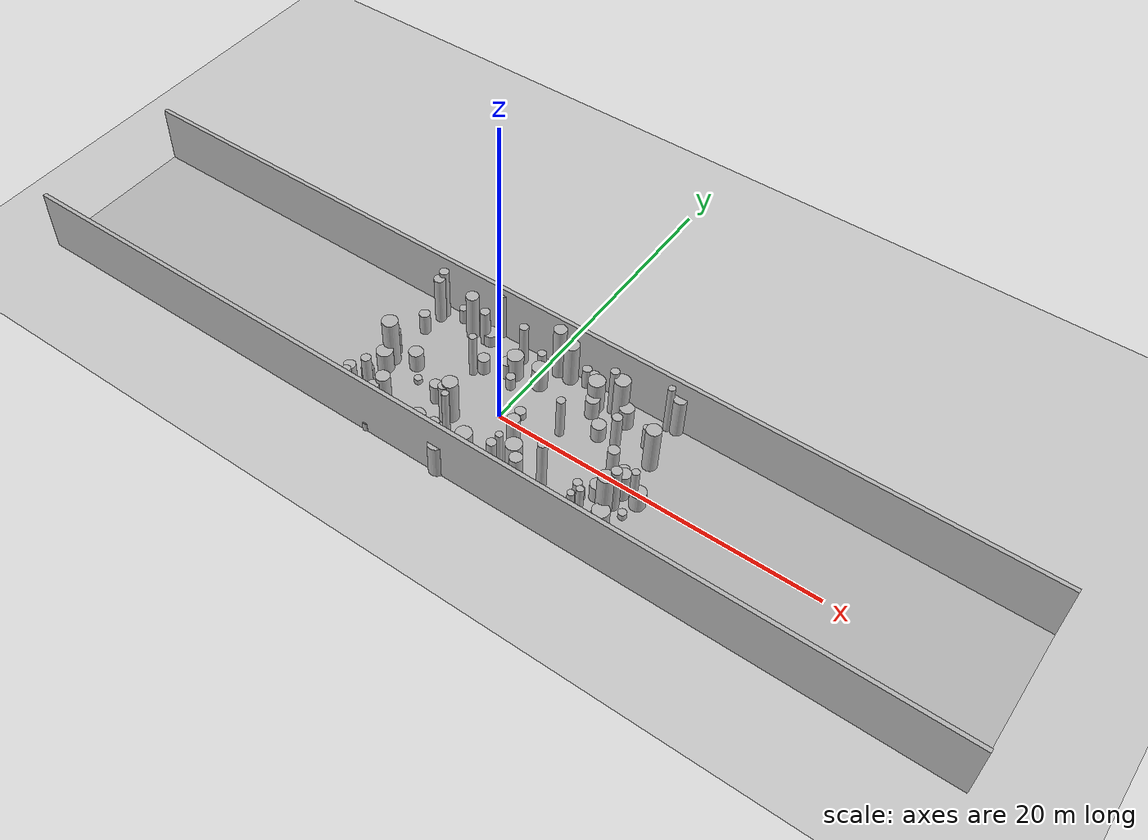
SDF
<sdf version="1.4">
 <world name="default">
  <include><uri>model://ground_plane</uri></include>
  <include><uri>model://sun</uri></include>
  <model name="forest">
   <static>true</static>
   <link name="cylinder1">
    <pose>-3.410056936858453 -1.2701892150677887 0.8086973027366486 0 0 0</pose>
    <visual name="visual">
     <geometry>
      <cylinder><radius>0.33904369996701267</radius><length>1.6173946054732973</length></cylinder>
     </geometry>
    </visual>
    <collision name="collision">
     <geometry>
      <cylinder><radius>0.33904369996701267</radius><length>1.6173946054732973</length></cylinder>
     </geometry>
     <max_contacts>0</max_contacts>
    </collision>
   </link>
   <link name="cylinder3">
    <pose>1.6993842616417325 4.403585021799794 1.548561787785984 0 0 0</pose>
    <visual name="visual">
     <geometry>
      <cylinder><radius>0.44402708403622215</radius><length>3.097123575571968</length></cylinder>
     </geometry>
    </visual>
    <collision name="collision">
     <geometry>
      <cylinder><radius>0.44402708403622215</radius><length>3.097123575571968</length></cylinder>
     </geometry>
     <max_contacts>0</max_contacts>
    </collision>
   </link>
   <link name="cylinder4">
    <pose>-3.6042722267468648 4.039614056958708 0.5409431707284422 0 0 0</pose>
    <visual name="visual">
     <geometry>
      <cylinder><radius>0.4456799034941059</radius><length>1.0818863414568844</length></cylinder>
     </geometry>
    </visual>
    <collision name="collision">
     <geometry>
      <cylinder><radius>0.4456799034941059</radius><length>1.0818863414568844</length></cylinder>
     </geometry>
     <max_contacts>0</max_contacts>
    </collision>
   </link>
   <link name="cylinder11">
    <pose>8.513826271152027 -1.5162641126023058 1.6599088720260913 0 0 0</pose>
    <visual name="visual">
     <geometry>
      <cylinder><radius>0.29402407786437507</radius><length>3.3198177440521826</length></cylinder>
     </geometry>
    </visual>
    <collision name="collision">
     <geometry>
      <cylinder><radius>0.29402407786437507</radius><length>3.3198177440521826</length></cylinder>
     </geometry>
     <max_contacts>0</max_contacts>
    </collision>
   </link>
   <link name="cylinder14">
    <pose>9.075930163478006 -4.630681401572576 1.597628720508523 0 0 0</pose>
    <visual name="visual">
     <geometry>
      <cylinder><radius>0.2718848688338954</radius><length>3.195257441017046</length></cylinder>
     </geometry>
    </visual>
    <collision name="collision">
     <geometry>
      <cylinder><radius>0.2718848688338954</radius><length>3.195257441017046</length></cylinder>
     </geometry>
     <max_contacts>0</max_contacts>
    </collision>
   </link>
   <link name="cylinder15">
    <pose>0.5785352989505945 2.9750292186021117 0.9102361143124422 0 0 0</pose>
    <visual name="visual">
     <geometry>
      <cylinder><radius>0.4637304822678691</radius><length>1.8204722286248844</length></cylinder>
     </geometry>
    </visual>
    <collision name="collision">
     <geometry>
      <cylinder><radius>0.4637304822678691</radius><length>1.8204722286248844</length></cylinder>
     </geometry>
     <max_contacts>0</max_contacts>
    </collision>
   </link>
   <link name="cylinder17">
    <pose>-4.775308046147366 3.8890800789210154 1.7092690073785224 0 0 0</pose>
    <visual name="visual">
     <geometry>
      <cylinder><radius>0.37615139349503185</radius><length>3.4185380147570448</length></cylinder>
     </geometry>
    </visual>
    <collision name="collision">
     <geometry>
      <cylinder><radius>0.37615139349503185</radius><length>3.4185380147570448</length></cylinder>
     </geometry>
     <max_contacts>0</max_contacts>
    </collision>
   </link>
   <link name="cylinder20">
    <pose>3.4435270528308592 0.8448754294673577 1.50543711050104 0 0 0</pose>
    <visual name="visual">
     <geometry><cylinder><radius>0.2462129085398339</radius><length>3.01087422100208</length></cylinder></geometry>
    </visual>
    <collision name="collision">
     <geometry><cylinder><radius>0.2462129085398339</radius><length>3.01087422100208</length></cylinder></geometry>
     <max_contacts>0</max_contacts>
    </collision>
   </link>
   <link name="cylinder21">
    <pose>-0.7353567605645921 -4.716612959977095 1.8322252500576872 0 0 0</pose>
    <visual name="visual">
     <geometry>
      <cylinder><radius>0.32141102089215934</radius><length>3.6644505001153744</length></cylinder>
     </geometry>
    </visual>
    <collision name="collision">
     <geometry>
      <cylinder><radius>0.32141102089215934</radius><length>3.6644505001153744</length></cylinder>
     </geometry>
     <max_contacts>0</max_contacts>
    </collision>
   </link>
   <link name="cylinder22">
    <pose>4.106205934701023 2.993755799769401 0.7927489453100149 0 0 0</pose>
    <visual name="visual">
     <geometry>
      <cylinder><radius>0.3991636697615998</radius><length>1.5854978906200299</length></cylinder>
     </geometry>
    </visual>
    <collision name="collision">
     <geometry>
      <cylinder><radius>0.3991636697615998</radius><length>1.5854978906200299</length></cylinder>
     </geometry>
     <max_contacts>0</max_contacts>
    </collision>
   </link>
   <link name="cylinder23">
    <pose>-7.069070440820113 3.827537880866803 1.739081858629278 0 0 0</pose>
    <visual name="visual">
     <geometry>
      <cylinder><radius>0.3302921439886698</radius><length>3.478163717258556</length></cylinder>
     </geometry>
    </visual>
    <collision name="collision">
     <geometry>
      <cylinder><radius>0.3302921439886698</radius><length>3.478163717258556</length></cylinder>
     </geometry>
     <max_contacts>0</max_contacts>
    </collision>
   </link>
   <link name="cylinder29">
    <pose>-0.9555137572657237 2.786083634189266 0.9702023812267938 0 0 0</pose>
    <visual name="visual">
     <geometry>
      <cylinder><radius>0.47938045877978486</radius><length>1.9404047624535876</length></cylinder>
     </geometry>
    </visual>
    <collision name="collision">
     <geometry>
      <cylinder><radius>0.47938045877978486</radius><length>1.9404047624535876</length></cylinder>
     </geometry>
     <max_contacts>0</max_contacts>
    </collision>
   </link>
   <link name="cylinder38">
    <pose>7.666241506215989 2.8532443910162995 0.9271853040387164 0 0 0</pose>
    <visual name="visual">
     <geometry>
      <cylinder><radius>0.21847830880316244</radius><length>1.8543706080774327</length></cylinder>
     </geometry>
    </visual>
    <collision name="collision">
     <geometry>
      <cylinder><radius>0.21847830880316244</radius><length>1.8543706080774327</length></cylinder>
     </geometry>
     <max_contacts>0</max_contacts>
    </collision>
   </link>
   <link name="cylinder42">
    <pose>-8.307093750710266 -2.8164997007199197 0.6622072614163566 0 0 0</pose>
    <visual name="visual">
     <geometry>
      <cylinder><radius>0.35939469345647124</radius><length>1.324414522832713</length></cylinder>
     </geometry>
    </visual>
    <collision name="collision">
     <geometry>
      <cylinder><radius>0.35939469345647124</radius><length>1.324414522832713</length></cylinder>
     </geometry>
     <max_contacts>0</max_contacts>
    </collision>
   </link>
   <link name="cylinder44">
    <pose>0.904040064140414 4.390043288172659 1.9281252989354605 0 0 0</pose>
    <visual name="visual">
     <geometry>
      <cylinder><radius>0.3819991879143706</radius><length>3.856250597870921</length></cylinder>
     </geometry>
    </visual>
    <collision name="collision">
     <geometry>
      <cylinder><radius>0.3819991879143706</radius><length>3.856250597870921</length></cylinder>
     </geometry>
     <max_contacts>0</max_contacts>
    </collision>
   </link>
   <link name="cylinder49">
    <pose>7.953252640835039 4.574869728848338 1.8128917431856637 0 0 0</pose>
    <visual name="visual">
     <geometry>
      <cylinder><radius>0.2049968974062898</radius><length>3.6257834863713274</length></cylinder>
     </geometry>
    </visual>
    <collision name="collision">
     <geometry>
      <cylinder><radius>0.2049968974062898</radius><length>3.6257834863713274</length></cylinder>
     </geometry>
     <max_contacts>0</max_contacts>
    </collision>
   </link>
   <link name="cylinder51">
    <pose>4.672101008395934 -2.6002466242280886 1.8634355950134864 0 0 0</pose>
    <visual name="visual">
     <geometry>
      <cylinder><radius>0.27376685721473126</radius><length>3.726871190026973</length></cylinder>
     </geometry>
    </visual>
    <collision name="collision">
     <geometry>
      <cylinder><radius>0.27376685721473126</radius><length>3.726871190026973</length></cylinder>
     </geometry>
     <max_contacts>0</max_contacts>
    </collision>
   </link>
   <link name="cylinder56">
    <pose>-5.861789615702062 4.453023283589221 0.6557879777366558 0 0 0</pose>
    <visual name="visual">
     <geometry>
      <cylinder><radius>0.25591483969236617</radius><length>1.3115759554733115</length></cylinder>
     </geometry>
    </visual>
    <collision name="collision">
     <geometry>
      <cylinder><radius>0.25591483969236617</radius><length>1.3115759554733115</length></cylinder>
     </geometry>
     <max_contacts>0</max_contacts>
    </collision>
   </link>
   <link name="cylinder57">
    <pose>-1.216583282131932 3.942091139612856 1.5413353604361941 0 0 0</pose>
    <visual name="visual">
     <geometry>
      <cylinder><radius>0.2659817680177529</radius><length>3.0826707208723882</length></cylinder>
     </geometry>
    </visual>
    <collision name="collision">
     <geometry>
      <cylinder><radius>0.2659817680177529</radius><length>3.0826707208723882</length></cylinder>
     </geometry>
     <max_contacts>0</max_contacts>
    </collision>
   </link>
   <link name="cylinder62">
    <pose>5.987886354903342 3.5073927301963845 0.8142929368390077 0 0 0</pose>
    <visual name="visual">
     <geometry>
      <cylinder><radius>0.4178552959836793</radius><length>1.6285858736780154</length></cylinder>
     </geometry>
    </visual>
    <collision name="collision">
     <geometry>
      <cylinder><radius>0.4178552959836793</radius><length>1.6285858736780154</length></cylinder>
     </geometry>
     <max_contacts>0</max_contacts>
    </collision>
   </link>
   <link name="cylinder63">
    <pose>8.476384591417855 -2.7030263662355027 0.5978973282370059 0 0 0</pose>
    <visual name="visual">
     <geometry>
      <cylinder><radius>0.4971026707762667</radius><length>1.1957946564740118</length></cylinder>
     </geometry>
    </visual>
    <collision name="collision">
     <geometry>
      <cylinder><radius>0.4971026707762667</radius><length>1.1957946564740118</length></cylinder>
     </geometry>
     <max_contacts>0</max_contacts>
    </collision>
   </link>
   <link name="cylinder64">
    <pose>2.7619240202183164 -2.455753605274219 1.0691079849985297 0 0 0</pose>
    <visual name="visual">
     <geometry>
      <cylinder><radius>0.47196936832046193</radius><length>2.1382159699970593</length></cylinder>
     </geometry>
    </visual>
    <collision name="collision">
     <geometry>
      <cylinder><radius>0.47196936832046193</radius><length>2.1382159699970593</length></cylinder>
     </geometry>
     <max_contacts>0</max_contacts>
    </collision>
   </link>
   <link name="cylinder65">
    <pose>5.555162849658647 -4.183981940254874 0.7771060286569154 0 0 0</pose>
    <visual name="visual">
     <geometry>
      <cylinder><radius>0.4940623162058991</radius><length>1.5542120573138307</length></cylinder>
     </geometry>
    </visual>
    <collision name="collision">
     <geometry>
      <cylinder><radius>0.4940623162058991</radius><length>1.5542120573138307</length></cylinder>
     </geometry>
     <max_contacts>0</max_contacts>
    </collision>
   </link>
   <link name="cylinder74">
    <pose>-5.344949083121492 -4.9527701439744884 0.3000630937218423 0 0 0</pose>
    <visual name="visual">
     <geometry>
      <cylinder><radius>0.2527022216960019</radius><length>0.6001261874436846</length></cylinder>
     </geometry>
    </visual>
    <collision name="collision">
     <geometry>
      <cylinder><radius>0.2527022216960019</radius><length>0.6001261874436846</length></cylinder>
     </geometry>
     <max_contacts>0</max_contacts>
    </collision>
   </link>
   <link name="cylinder78">
    <pose>-0.48821396889628943 -4.9151921007384605 1.127450024972422 0 0 0</pose>
    <visual name="visual">
     <geometry>
      <cylinder><radius>0.48897684717883183</radius><length>2.254900049944844</length></cylinder>
     </geometry>
    </visual>
    <collision name="collision">
     <geometry>
      <cylinder><radius>0.48897684717883183</radius><length>2.254900049944844</length></cylinder>
     </geometry>
     <max_contacts>0</max_contacts>
    </collision>
   </link>
   <link name="cylinder82">
    <pose>1.9240226608488058 -2.603008552193422 1.2350960365866193 0 0 0</pose>
    <visual name="visual">
     <geometry>
      <cylinder><radius>0.2125009094644301</radius><length>2.4701920731732385</length></cylinder>
     </geometry>
    </visual>
    <collision name="collision">
     <geometry>
      <cylinder><radius>0.2125009094644301</radius><length>2.4701920731732385</length></cylinder>
     </geometry>
     <max_contacts>0</max_contacts>
    </collision>
   </link>
   <link name="cylinder84">
    <pose>-3.3835551550107823 4.963984115556979 1.7615465854213015 0 0 0</pose>
    <visual name="visual">
     <geometry><cylinder><radius>0.285282159561505</radius><length>3.523093170842603</length></cylinder></geometry>
    </visual>
    <collision name="collision">
     <geometry><cylinder><radius>0.285282159561505</radius><length>3.523093170842603</length></cylinder></geometry>
     <max_contacts>0</max_contacts>
    </collision>
   </link>
   <link name="cylinder89">
    <pose>7.447774535454229 -1.5333572310147292 0.6947254669295215 0 0 0</pose>
    <visual name="visual">
     <geometry>
      <cylinder><radius>0.3918472777974531</radius><length>1.389450933859043</length></cylinder>
     </geometry>
    </visual>
    <collision name="collision">
     <geometry>
      <cylinder><radius>0.3918472777974531</radius><length>1.389450933859043</length></cylinder>
     </geometry>
     <max_contacts>0</max_contacts>
    </collision>
   </link>
   <link name="cylinder91">
    <pose>1.0441906551639946 0.527311071146257 0.372120222019101 0 0 0</pose>
    <visual name="visual">
     <geometry>
      <cylinder><radius>0.3179980335426568</radius><length>0.744240444038202</length></cylinder>
     </geometry>
    </visual>
    <collision name="collision">
     <geometry>
      <cylinder><radius>0.3179980335426568</radius><length>0.744240444038202</length></cylinder>
     </geometry>
     <max_contacts>0</max_contacts>
    </collision>
   </link>
   <link name="cylinder96">
    <pose>-2.18765522012977 -2.090191180456009 1.5269030576328113 0 0 0</pose>
    <visual name="visual">
     <geometry>
      <cylinder><radius>0.2880252304737093</radius><length>3.0538061152656226</length></cylinder>
     </geometry>
    </visual>
    <collision name="collision">
     <geometry>
      <cylinder><radius>0.2880252304737093</radius><length>3.0538061152656226</length></cylinder>
     </geometry>
     <max_contacts>0</max_contacts>
    </collision>
   </link>
   <link name="cylinder97">
    <pose>3.5290431675477087 -3.3259465993697237 1.246069684449678 0 0 0</pose>
    <visual name="visual">
     <geometry>
      <cylinder><radius>0.3631945659518415</radius><length>2.492139368899356</length></cylinder>
     </geometry>
    </visual>
    <collision name="collision">
     <geometry>
      <cylinder><radius>0.3631945659518415</radius><length>2.492139368899356</length></cylinder>
     </geometry>
     <max_contacts>0</max_contacts>
    </collision>
   </link>
   <link name="cylinder99">
    <pose>8.454155598964633 4.76141744301648 1.4431473033985371 0 0 0</pose>
    <visual name="visual">
     <geometry>
      <cylinder><radius>0.378942119532782</radius><length>2.8862946067970743</length></cylinder>
     </geometry>
    </visual>
    <collision name="collision">
     <geometry>
      <cylinder><radius>0.378942119532782</radius><length>2.8862946067970743</length></cylinder>
     </geometry>
     <max_contacts>0</max_contacts>
    </collision>
   </link>
   <link name="cylinder100">
    <pose>2.0262069591907235 -1.4811771913672134 1.3592636784955692 0 0 0</pose>
    <visual name="visual">
     <geometry>
      <cylinder><radius>0.38116836146506805</radius><length>2.7185273569911383</length></cylinder>
     </geometry>
    </visual>
    <collision name="collision">
     <geometry>
      <cylinder><radius>0.38116836146506805</radius><length>2.7185273569911383</length></cylinder>
     </geometry>
     <max_contacts>0</max_contacts>
    </collision>
   </link>
   <link name="cylinder101">
    <pose>-2.0100371667277805 -1.7282284383721747 1.574066608651663 0 0 0</pose>
    <visual name="visual">
     <geometry>
      <cylinder><radius>0.45331978980849696</radius><length>3.148133217303326</length></cylinder>
     </geometry>
    </visual>
    <collision name="collision">
     <geometry>
      <cylinder><radius>0.45331978980849696</radius><length>3.148133217303326</length></cylinder>
     </geometry>
     <max_contacts>0</max_contacts>
    </collision>
   </link>
   <link name="cylinder105">
    <pose>-1.1269547453769349 -4.664405201667633 1.5533646975971895 0 0 0</pose>
    <visual name="visual">
     <geometry>
      <cylinder><radius>0.41441380141961914</radius><length>3.106729395194379</length></cylinder>
     </geometry>
    </visual>
    <collision name="collision">
     <geometry>
      <cylinder><radius>0.41441380141961914</radius><length>3.106729395194379</length></cylinder>
     </geometry>
     <max_contacts>0</max_contacts>
    </collision>
   </link>
   <link name="cylinder106">
    <pose>5.265616871098615 1.8866199431176645 0.66029550988264 0 0 0</pose>
    <visual name="visual">
     <geometry><cylinder><radius>0.4156187701345254</radius><length>1.32059101976528</length></cylinder></geometry>
    </visual>
    <collision name="collision">
     <geometry><cylinder><radius>0.4156187701345254</radius><length>1.32059101976528</length></cylinder></geometry>
     <max_contacts>0</max_contacts>
    </collision>
   </link>
   <link name="cylinder107">
    <pose>-7.0520566402760885 4.240237499098464 1.8624179462977901 0 0 0</pose>
    <visual name="visual">
     <geometry>
      <cylinder><radius>0.2793973855012143</radius><length>3.7248358925955802</length></cylinder>
     </geometry>
    </visual>
    <collision name="collision">
     <geometry>
      <cylinder><radius>0.2793973855012143</radius><length>3.7248358925955802</length></cylinder>
     </geometry>
     <max_contacts>0</max_contacts>
    </collision>
   </link>
   <link name="cylinder108">
    <pose>-7.17903480211481 2.4985365651527225 0.8328884668430663 0 0 0</pose>
    <visual name="visual">
     <geometry>
      <cylinder><radius>0.32481442586393244</radius><length>1.6657769336861326</length></cylinder>
     </geometry>
    </visual>
    <collision name="collision">
     <geometry>
      <cylinder><radius>0.32481442586393244</radius><length>1.6657769336861326</length></cylinder>
     </geometry>
     <max_contacts>0</max_contacts>
    </collision>
   </link>
   <link name="cylinder115">
    <pose>3.9670096905990775 3.5206465443669117 1.2415007969273095 0 0 0</pose>
    <visual name="visual">
     <geometry>
      <cylinder><radius>0.48582071134457167</radius><length>2.483001593854619</length></cylinder>
     </geometry>
    </visual>
    <collision name="collision">
     <geometry>
      <cylinder><radius>0.48582071134457167</radius><length>2.483001593854619</length></cylinder>
     </geometry>
     <max_contacts>0</max_contacts>
    </collision>
   </link>
   <link name="cylinder117">
    <pose>0.01663398971237129 -3.191913548699019 0.8949154427879038 0 0 0</pose>
    <visual name="visual">
     <geometry>
      <cylinder><radius>0.4764992846977568</radius><length>1.7898308855758076</length></cylinder>
     </geometry>
    </visual>
    <collision name="collision">
     <geometry>
      <cylinder><radius>0.4764992846977568</radius><length>1.7898308855758076</length></cylinder>
     </geometry>
     <max_contacts>0</max_contacts>
    </collision>
   </link>
   <link name="cylinder118">
    <pose>-7.1657664120382485 -1.103263338679369 0.8538160496822831 0 0 0</pose>
    <visual name="visual">
     <geometry>
      <cylinder><radius>0.4833527510020856</radius><length>1.7076320993645662</length></cylinder>
     </geometry>
    </visual>
    <collision name="collision">
     <geometry>
      <cylinder><radius>0.4833527510020856</radius><length>1.7076320993645662</length></cylinder>
     </geometry>
     <max_contacts>0</max_contacts>
    </collision>
   </link>
   <link name="cylinder121">
    <pose>-5.045050052677276 -0.8360299215641618 0.30074459435944917 0 0 0</pose>
    <visual name="visual">
     <geometry>
      <cylinder><radius>0.2345839055761955</radius><length>0.6014891887188983</length></cylinder>
     </geometry>
    </visual>
    <collision name="collision">
     <geometry>
      <cylinder><radius>0.2345839055761955</radius><length>0.6014891887188983</length></cylinder>
     </geometry>
     <max_contacts>0</max_contacts>
    </collision>
   </link>
   <link name="cylinder122">
    <pose>8.18824473058553 -0.16479095459364324 0.9033372044904705 0 0 0</pose>
    <visual name="visual">
     <geometry>
      <cylinder><radius>0.3045565476931502</radius><length>1.806674408980941</length></cylinder>
     </geometry>
    </visual>
    <collision name="collision">
     <geometry>
      <cylinder><radius>0.3045565476931502</radius><length>1.806674408980941</length></cylinder>
     </geometry>
     <max_contacts>0</max_contacts>
    </collision>
   </link>
   <link name="cylinder140">
    <pose>-1.3437851640908711 2.5695772574655065 0.7008884507051227 0 0 0</pose>
    <visual name="visual">
     <geometry>
      <cylinder><radius>0.379410713040206</radius><length>1.4017769014102455</length></cylinder>
     </geometry>
    </visual>
    <collision name="collision">
     <geometry>
      <cylinder><radius>0.379410713040206</radius><length>1.4017769014102455</length></cylinder>
     </geometry>
     <max_contacts>0</max_contacts>
    </collision>
   </link>
   <link name="cylinder142">
    <pose>-5.832251488285063 0.025188498025076278 0.7567058276348675 0 0 0</pose>
    <visual name="visual">
     <geometry>
      <cylinder><radius>0.42881849972693087</radius><length>1.513411655269735</length></cylinder>
     </geometry>
    </visual>
    <collision name="collision">
     <geometry>
      <cylinder><radius>0.42881849972693087</radius><length>1.513411655269735</length></cylinder>
     </geometry>
     <max_contacts>0</max_contacts>
    </collision>
   </link>
   <link name="cylinder143">
    <pose>-7.449722033508998 0.22869438516081964 1.0142557114813062 0 0 0</pose>
    <visual name="visual">
     <geometry>
      <cylinder><radius>0.29577408432567776</radius><length>2.0285114229626124</length></cylinder>
     </geometry>
    </visual>
    <collision name="collision">
     <geometry>
      <cylinder><radius>0.29577408432567776</radius><length>2.0285114229626124</length></cylinder>
     </geometry>
     <max_contacts>0</max_contacts>
    </collision>
   </link>
   <link name="cylinder147">
    <pose>2.2318859119589405 -3.6942642966422836 1.5702271628601498 0 0 0</pose>
    <visual name="visual">
     <geometry>
      <cylinder><radius>0.28207948642781167</radius><length>3.1404543257202997</length></cylinder>
     </geometry>
    </visual>
    <collision name="collision">
     <geometry>
      <cylinder><radius>0.28207948642781167</radius><length>3.1404543257202997</length></cylinder>
     </geometry>
     <max_contacts>0</max_contacts>
    </collision>
   </link>
   <link name="cylinder149">
    <pose>-4.611925199534898 -4.125645401795887 0.4610702926061932 0 0 0</pose>
    <visual name="visual">
     <geometry>
      <cylinder><radius>0.4543632709265271</radius><length>0.9221405852123864</length></cylinder>
     </geometry>
    </visual>
    <collision name="collision">
     <geometry>
      <cylinder><radius>0.4543632709265271</radius><length>0.9221405852123864</length></cylinder>
     </geometry>
     <max_contacts>0</max_contacts>
    </collision>
   </link>
   <link name="cylinder151">
    <pose>7.540270837834235 -3.3536562924953204 1.5060341078564539 0 0 0</pose>
    <visual name="visual">
     <geometry>
      <cylinder><radius>0.20890541704790747</radius><length>3.0120682157129077</length></cylinder>
     </geometry>
    </visual>
    <collision name="collision">
     <geometry>
      <cylinder><radius>0.20890541704790747</radius><length>3.0120682157129077</length></cylinder>
     </geometry>
     <max_contacts>0</max_contacts>
    </collision>
   </link>
   <link name="cylinder153">
    <pose>-2.9837255852383677 1.551792398521119 1.6278116451622306 0 0 0</pose>
    <visual name="visual">
     <geometry>
      <cylinder><radius>0.22860658085641564</radius><length>3.2556232903244613</length></cylinder>
     </geometry>
    </visual>
    <collision name="collision">
     <geometry>
      <cylinder><radius>0.22860658085641564</radius><length>3.2556232903244613</length></cylinder>
     </geometry>
     <max_contacts>0</max_contacts>
    </collision>
   </link>
   <link name="cylinder155">
    <pose>6.753305606146544 -2.122759517920457 0.4765677977854902 0 0 0</pose>
    <visual name="visual">
     <geometry>
      <cylinder><radius>0.3114492841796859</radius><length>0.9531355955709804</length></cylinder>
     </geometry>
    </visual>
    <collision name="collision">
     <geometry>
      <cylinder><radius>0.3114492841796859</radius><length>0.9531355955709804</length></cylinder>
     </geometry>
     <max_contacts>0</max_contacts>
    </collision>
   </link>
   <link name="cylinder158">
    <pose>-6.939897222559168 -4.425659071974048 1.6844545238135116 0 0 0</pose>
    <visual name="visual">
     <geometry>
      <cylinder><radius>0.2519312906877482</radius><length>3.368909047627023</length></cylinder>
     </geometry>
    </visual>
    <collision name="collision">
     <geometry>
      <cylinder><radius>0.2519312906877482</radius><length>3.368909047627023</length></cylinder>
     </geometry>
     <max_contacts>0</max_contacts>
    </collision>
   </link>
   <link name="cylinder159">
    <pose>2.662314847898056 4.583353903330057 0.8101523519440019 0 0 0</pose>
    <visual name="visual">
     <geometry>
      <cylinder><radius>0.2693161028740845</radius><length>1.6203047038880038</length></cylinder>
     </geometry>
    </visual>
    <collision name="collision">
     <geometry>
      <cylinder><radius>0.2693161028740845</radius><length>1.6203047038880038</length></cylinder>
     </geometry>
     <max_contacts>0</max_contacts>
    </collision>
   </link>
   <link name="cylinder162">
    <pose>6.278680372624528 2.0295871469236912 1.2503231246175543 0 0 0</pose>
    <visual name="visual">
     <geometry>
      <cylinder><radius>0.2889671473416684</radius><length>2.5006462492351087</length></cylinder>
     </geometry>
    </visual>
    <collision name="collision">
     <geometry>
      <cylinder><radius>0.2889671473416684</radius><length>2.5006462492351087</length></cylinder>
     </geometry>
     <max_contacts>0</max_contacts>
    </collision>
   </link>
   <link name="cylinder165">
    <pose>0.2455348825671102 3.6230762905129925 1.0845931807552873 0 0 0</pose>
    <visual name="visual">
     <geometry>
      <cylinder><radius>0.24729188276820296</radius><length>2.1691863615105746</length></cylinder>
     </geometry>
    </visual>
    <collision name="collision">
     <geometry>
      <cylinder><radius>0.24729188276820296</radius><length>2.1691863615105746</length></cylinder>
     </geometry>
     <max_contacts>0</max_contacts>
    </collision>
   </link>
   <link name="cylinder167">
    <pose>6.507806271920675 -4.188499996760378 1.1190438404396175 0 0 0</pose>
    <visual name="visual">
     <geometry><cylinder><radius>0.382001092572669</radius><length>2.238087680879235</length></cylinder></geometry>
    </visual>
    <collision name="collision">
     <geometry><cylinder><radius>0.382001092572669</radius><length>2.238087680879235</length></cylinder></geometry>
     <max_contacts>0</max_contacts>
    </collision>
   </link>
   <link name="cylinder168">
    <pose>-5.955313370904836 -2.7205814068654774 0.9363315096484442 0 0 0</pose>
    <visual name="visual">
     <geometry>
      <cylinder><radius>0.41996027178145734</radius><length>1.8726630192968885</length></cylinder>
     </geometry>
    </visual>
    <collision name="collision">
     <geometry>
      <cylinder><radius>0.41996027178145734</radius><length>1.8726630192968885</length></cylinder>
     </geometry>
     <max_contacts>0</max_contacts>
    </collision>
   </link>
   <link name="cylinder172">
    <pose>6.995356080647902 -2.7445661976907356 1.2288306683545116 0 0 0</pose>
    <visual name="visual">
     <geometry>
      <cylinder><radius>0.24886425088943964</radius><length>2.457661336709023</length></cylinder>
     </geometry>
    </visual>
    <collision name="collision">
     <geometry>
      <cylinder><radius>0.24886425088943964</radius><length>2.457661336709023</length></cylinder>
     </geometry>
     <max_contacts>0</max_contacts>
    </collision>
   </link>
   <link name="cylinder173">
    <pose>-0.9666894380478475 -4.000355099119104 0.47204089362255963 0 0 0</pose>
    <visual name="visual">
     <geometry>
      <cylinder><radius>0.2696632736147924</radius><length>0.9440817872451193</length></cylinder>
     </geometry>
    </visual>
    <collision name="collision">
     <geometry>
      <cylinder><radius>0.2696632736147924</radius><length>0.9440817872451193</length></cylinder>
     </geometry>
     <max_contacts>0</max_contacts>
    </collision>
   </link>
   <link name="cylinder181">
    <pose>-6.152522744014465 -3.3330417938270953 0.7960919406676716 0 0 0</pose>
    <visual name="visual">
     <geometry>
      <cylinder><radius>0.3458643513564071</radius><length>1.5921838813353433</length></cylinder>
     </geometry>
    </visual>
    <collision name="collision">
     <geometry>
      <cylinder><radius>0.3458643513564071</radius><length>1.5921838813353433</length></cylinder>
     </geometry>
     <max_contacts>0</max_contacts>
    </collision>
   </link>
   <link name="cylinder184">
    <pose>8.193035965637065 -4.036262094125758 0.8602480349647209 0 0 0</pose>
    <visual name="visual">
     <geometry>
      <cylinder><radius>0.4912859617452464</radius><length>1.7204960699294418</length></cylinder>
     </geometry>
    </visual>
    <collision name="collision">
     <geometry>
      <cylinder><radius>0.4912859617452464</radius><length>1.7204960699294418</length></cylinder>
     </geometry>
     <max_contacts>0</max_contacts>
    </collision>
   </link>
   <link name="cylinder186">
    <pose>8.476044342081543 -0.6370637481013395 1.0628644336486623 0 0 0</pose>
    <visual name="visual">
     <geometry>
      <cylinder><radius>0.3932719110542426</radius><length>2.1257288672973247</length></cylinder>
     </geometry>
    </visual>
    <collision name="collision">
     <geometry>
      <cylinder><radius>0.3932719110542426</radius><length>2.1257288672973247</length></cylinder>
     </geometry>
     <max_contacts>0</max_contacts>
    </collision>
   </link>
   <link name="cylinder187">
    <pose>-7.2429043731477805 -0.39806804860475253 1.7349902629309049 0 0 0</pose>
    <visual name="visual">
     <geometry>
      <cylinder><radius>0.4750301130353699</radius><length>3.4699805258618097</length></cylinder>
     </geometry>
    </visual>
    <collision name="collision">
     <geometry>
      <cylinder><radius>0.4750301130353699</radius><length>3.4699805258618097</length></cylinder>
     </geometry>
     <max_contacts>0</max_contacts>
    </collision>
   </link>
   <link name="cylinder190">
    <pose>9.452927483596802 -0.698949576259773 0.7008479118514679 0 0 0</pose>
    <visual name="visual">
     <geometry>
      <cylinder><radius>0.4582380857568583</radius><length>1.4016958237029358</length></cylinder>
     </geometry>
    </visual>
    <collision name="collision">
     <geometry>
      <cylinder><radius>0.4582380857568583</radius><length>1.4016958237029358</length></cylinder>
     </geometry>
     <max_contacts>0</max_contacts>
    </collision>
   </link>
   <link name="cylinder194">
    <pose>5.399799715047248 3.801249440730812 1.617852056244018 0 0 0</pose>
    <visual name="visual">
     <geometry>
      <cylinder><radius>0.45418389898202205</radius><length>3.235704112488036</length></cylinder>
     </geometry>
    </visual>
    <collision name="collision">
     <geometry>
      <cylinder><radius>0.45418389898202205</radius><length>3.235704112488036</length></cylinder>
     </geometry>
     <max_contacts>0</max_contacts>
    </collision>
   </link>
   <link name="cylinder196">
    <pose>8.191502713036805 -1.983513117617247 1.5529557586120424 0 0 0</pose>
    <visual name="visual">
     <geometry>
      <cylinder><radius>0.4495362759446869</radius><length>3.1059115172240848</length></cylinder>
     </geometry>
    </visual>
    <collision name="collision">
     <geometry>
      <cylinder><radius>0.4495362759446869</radius><length>3.1059115172240848</length></cylinder>
     </geometry>
     <max_contacts>0</max_contacts>
    </collision>
   </link>
   <link name="cylinder203">
    <pose>7.694518966129962 -0.5637080430311965 1.7172278475273832 0 0 0</pose>
    <visual name="visual">
     <geometry>
      <cylinder><radius>0.3209285983632873</radius><length>3.4344556950547664</length></cylinder>
     </geometry>
    </visual>
    <collision name="collision">
     <geometry>
      <cylinder><radius>0.3209285983632873</radius><length>3.4344556950547664</length></cylinder>
     </geometry>
     <max_contacts>0</max_contacts>
    </collision>
   </link>
   <link name="cylinder205">
    <pose>-2.603523001420726 2.0457903326653497 0.665102962340389 0 0 0</pose>
    <visual name="visual">
     <geometry>
      <cylinder><radius>0.3619658212468383</radius><length>1.330205924680778</length></cylinder>
     </geometry>
    </visual>
    <collision name="collision">
     <geometry>
      <cylinder><radius>0.3619658212468383</radius><length>1.330205924680778</length></cylinder>
     </geometry>
     <max_contacts>0</max_contacts>
    </collision>
   </link>
   <link name="cylinder207">
    <pose>8.331555611732107 -0.4631563838724908 0.8221914682451102 0 0 0</pose>
    <visual name="visual">
     <geometry>
      <cylinder><radius>0.21404704257245724</radius><length>1.6443829364902205</length></cylinder>
     </geometry>
    </visual>
    <collision name="collision">
     <geometry>
      <cylinder><radius>0.21404704257245724</radius><length>1.6443829364902205</length></cylinder>
     </geometry>
     <max_contacts>0</max_contacts>
    </collision>
   </link>
   <link name="cylinder208">
    <pose>5.0413379987931215 -3.914464617488733 0.6041944199931812 0 0 0</pose>
    <visual name="visual">
     <geometry>
      <cylinder><radius>0.46258950499324064</radius><length>1.2083888399863625</length></cylinder>
     </geometry>
    </visual>
    <collision name="collision">
     <geometry>
      <cylinder><radius>0.46258950499324064</radius><length>1.2083888399863625</length></cylinder>
     </geometry>
     <max_contacts>0</max_contacts>
    </collision>
   </link>
   <link name="cylinder213">
    <pose>7.342394725706988 -3.901124665790341 1.556077583620516 0 0 0</pose>
    <visual name="visual">
     <geometry>
      <cylinder><radius>0.2020529284592091</radius><length>3.112155167241032</length></cylinder>
     </geometry>
    </visual>
    <collision name="collision">
     <geometry>
      <cylinder><radius>0.2020529284592091</radius><length>3.112155167241032</length></cylinder>
     </geometry>
     <max_contacts>0</max_contacts>
    </collision>
   </link>
   <link name="cylinder214">
    <pose>3.470334563697648 4.067908415499792 1.087304194829194 0 0 0</pose>
    <visual name="visual">
     <geometry>
      <cylinder><radius>0.26343483231805803</radius><length>2.174608389658388</length></cylinder>
     </geometry>
    </visual>
    <collision name="collision">
     <geometry>
      <cylinder><radius>0.26343483231805803</radius><length>2.174608389658388</length></cylinder>
     </geometry>
     <max_contacts>0</max_contacts>
    </collision>
   </link>
   <link name="cylinder216">
    <pose>-0.6522251440553397 1.9420701841791157 0.5758192289235042 0 0 0</pose>
    <visual name="visual">
     <geometry>
      <cylinder><radius>0.27365076795548005</radius><length>1.1516384578470085</length></cylinder>
     </geometry>
    </visual>
    <collision name="collision">
     <geometry>
      <cylinder><radius>0.27365076795548005</radius><length>1.1516384578470085</length></cylinder>
     </geometry>
     <max_contacts>0</max_contacts>
    </collision>
   </link>
   <link name="cylinder222">
    <pose>4.849063538011851 3.8554636065339754 1.7767497613222838 0 0 0</pose>
    <visual name="visual">
     <geometry><cylinder><radius>0.25017154660569</radius><length>3.5534995226445676</length></cylinder></geometry>
    </visual>
    <collision name="collision">
     <geometry><cylinder><radius>0.25017154660569</radius><length>3.5534995226445676</length></cylinder></geometry>
     <max_contacts>0</max_contacts>
    </collision>
   </link>
   <link name="cylinder225">
    <pose>-1.8423210062308968 -4.654919285337603 1.723137726638926 0 0 0</pose>
    <visual name="visual">
     <geometry>
      <cylinder><radius>0.4281500956467674</radius><length>3.446275453277852</length></cylinder>
     </geometry>
    </visual>
    <collision name="collision">
     <geometry>
      <cylinder><radius>0.4281500956467674</radius><length>3.446275453277852</length></cylinder>
     </geometry>
     <max_contacts>0</max_contacts>
    </collision>
   </link>
   <link name="cylinder228">
    <pose>-1.3504320015485511 -2.958572654134147 1.9118344828136566 0 0 0</pose>
    <visual name="visual">
     <geometry>
      <cylinder><radius>0.2053032605470598</radius><length>3.8236689656273133</length></cylinder>
     </geometry>
    </visual>
    <collision name="collision">
     <geometry>
      <cylinder><radius>0.2053032605470598</radius><length>3.8236689656273133</length></cylinder>
     </geometry>
     <max_contacts>0</max_contacts>
    </collision>
   </link>
   <link name="cylinder229">
    <pose>9.162814594676448 -0.6765327472372684 1.414829038782936 0 0 0</pose>
    <visual name="visual">
     <geometry>
      <cylinder><radius>0.22056775526173011</radius><length>2.829658077565872</length></cylinder>
     </geometry>
    </visual>
    <collision name="collision">
     <geometry>
      <cylinder><radius>0.22056775526173011</radius><length>2.829658077565872</length></cylinder>
     </geometry>
     <max_contacts>0</max_contacts>
    </collision>
   </link>
   <link name="cylinder230">
    <pose>-6.764239205320056 -3.0388191289573996 1.559283948412344 0 0 0</pose>
    <visual name="visual">
     <geometry>
      <cylinder><radius>0.28210105418800324</radius><length>3.118567896824688</length></cylinder>
     </geometry>
    </visual>
    <collision name="collision">
     <geometry>
      <cylinder><radius>0.28210105418800324</radius><length>3.118567896824688</length></cylinder>
     </geometry>
     <max_contacts>0</max_contacts>
    </collision>
   </link>
   <link name="cylinder233">
    <pose>-7.311454478779762 -2.449217080443873 0.6938093617514673 0 0 0</pose>
    <visual name="visual">
     <geometry>
      <cylinder><radius>0.3635422884046208</radius><length>1.3876187235029347</length></cylinder>
     </geometry>
    </visual>
    <collision name="collision">
     <geometry>
      <cylinder><radius>0.3635422884046208</radius><length>1.3876187235029347</length></cylinder>
     </geometry>
     <max_contacts>0</max_contacts>
    </collision>
   </link>
   <link name="cylinder238">
    <pose>8.566127495098861 1.9044521892613506 1.6196741588308226 0 0 0</pose>
    <visual name="visual">
     <geometry>
      <cylinder><radius>0.43057351176982933</radius><length>3.239348317661645</length></cylinder>
     </geometry>
    </visual>
    <collision name="collision">
     <geometry>
      <cylinder><radius>0.43057351176982933</radius><length>3.239348317661645</length></cylinder>
     </geometry>
     <max_contacts>0</max_contacts>
    </collision>
   </link>
   <link name="cylinder243">
    <pose>9.246102835907308 -1.796647440329051 0.3338447391834436 0 0 0</pose>
    <visual name="visual">
     <geometry>
      <cylinder><radius>0.24383994326646943</radius><length>0.6676894783668872</length></cylinder>
     </geometry>
    </visual>
    <collision name="collision">
     <geometry>
      <cylinder><radius>0.24383994326646943</radius><length>0.6676894783668872</length></cylinder>
     </geometry>
     <max_contacts>0</max_contacts>
    </collision>
   </link>
   <link name="cylinder247">
    <pose>-3.8671928395251527 3.876260406741812 1.3617197435678583 0 0 0</pose>
    <visual name="visual">
     <geometry>
      <cylinder><radius>0.28794480144310597</radius><length>2.7234394871357166</length></cylinder>
     </geometry>
    </visual>
    <collision name="collision">
     <geometry>
      <cylinder><radius>0.28794480144310597</radius><length>2.7234394871357166</length></cylinder>
     </geometry>
     <max_contacts>0</max_contacts>
    </collision>
   </link>
   <link name="cube0">
    <pose>0 5.0 2.0 0 0 0</pose>
    <visual name="visual"><geometry><box><size>60.0 0.25 4.0</size></box></geometry></visual>
    <collision name="collision">
     <geometry><box><size>60.0 0.25 4.0</size></box></geometry>
     <max_contacts>0</max_contacts>
    </collision>
   </link>
   <link name="cube1">
    <pose>0 -5.0 2.0 0 0 0</pose>
    <visual name="visual"><geometry><box><size>60.0 0.25 4.0</size></box></geometry></visual>
    <collision name="collision">
     <geometry><box><size>60.0 0.25 4.0</size></box></geometry>
     <max_contacts>0</max_contacts>
    </collision>
   </link>
   <link name="cube2">
    <pose>0 0 0.125 0 0 0</pose>
    <visual name="visual"><geometry><box><size>60.0 10 0.25</size></box></geometry></visual>
    <collision name="collision">
     <geometry><box><size>60.0 10 0.25</size></box></geometry>
     <max_contacts>0</max_contacts>
    </collision>
   </link>
  </model>
 </world>
</sdf>
